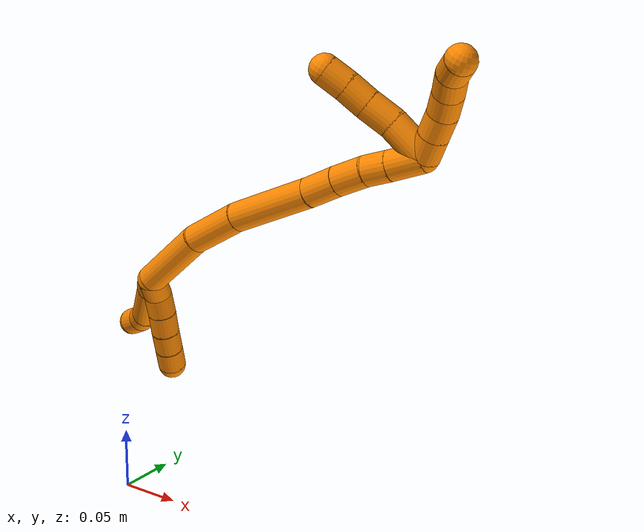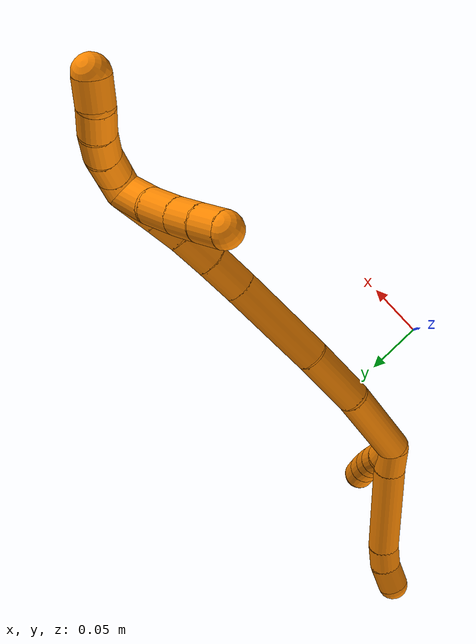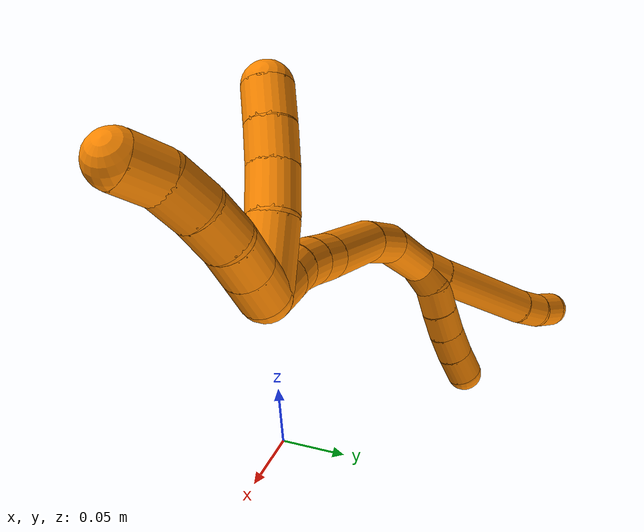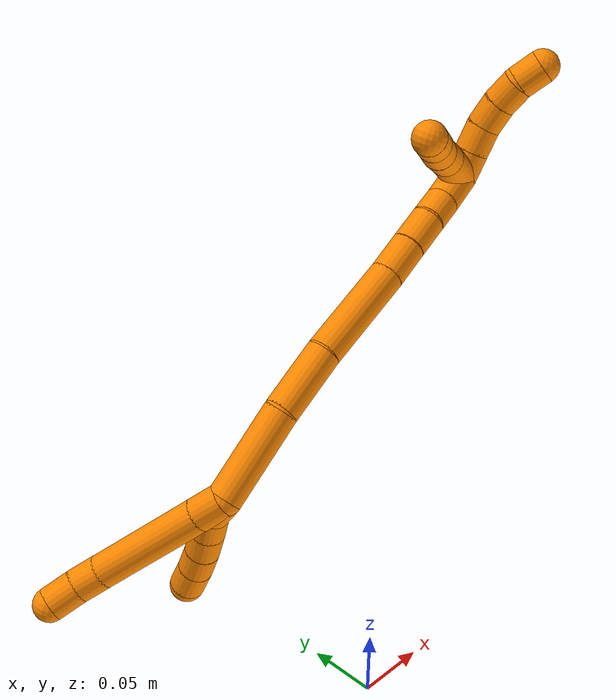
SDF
<sdf version="1.7">
 <world name="default">
  <model name="19">
   <static>0</static>
   <link name="19">
    <collision name="collision-cylinder-e_1_2_8">
     <pose>0.000466 0.007113 -0.008934 -2.46918 0.040792 -0.116608</pose>
     <geometry><cylinder><radius>0.0125</radius><length>0.022859</length></cylinder></geometry>
     <surface>
      <friction><ode><mu>1.16</mu><mu2>1.16</mu2><slip1>0</slip1><slip2>0</slip2></ode></friction>
      <contact><ode><kp>1e+06</kp><kd>1</kd><max_vel>0</max_vel><min_depth>0.001</min_depth></ode></contact>
     </surface>
    </collision>
    <visual name="visual-cylinder-e_1_2_8">
     <pose>0.000466 0.007113 -0.008934 -2.46918 0.040792 -0.116608</pose>
     <geometry><cylinder><radius>0.0125</radius><length>0.022859</length></cylinder></geometry>
     <material><ambient>0.996078 0.537255 0 1</ambient></material>
    </visual>
    <collision name="collision-cylinder-e_2_8_9">
     <pose>7.3e-05 0.040397 -0.050414 -2.46435 -0.020572 0.058396</pose>
     <geometry><cylinder><radius>0.0125</radius><length>0.083544</length></cylinder></geometry>
     <surface>
      <friction><ode><mu>1.16</mu><mu2>1.16</mu2><slip1>0</slip1><slip2>0</slip2></ode></friction>
      <contact><ode><kp>1e+06</kp><kd>1</kd><max_vel>0</max_vel><min_depth>0.001</min_depth></ode></contact>
     </surface>
    </collision>
    <visual name="visual-cylinder-e_2_8_9">
     <pose>7.3e-05 0.040397 -0.050414 -2.46435 -0.020572 0.058396</pose>
     <geometry><cylinder><radius>0.0125</radius><length>0.083544</length></cylinder></geometry>
     <material><ambient>0.996078 0.537255 0 1</ambient></material>
    </visual>
    <collision name="collision-cylinder-e_3_9_10">
     <pose>-0.00238 0.073159 -0.091057 -2.45833 -0.151436 0.420402</pose>
     <geometry><cylinder><radius>0.0125</radius><length>0.021122</length></cylinder></geometry>
     <surface>
      <friction><ode><mu>1.16</mu><mu2>1.16</mu2><slip1>0</slip1><slip2>0</slip2></ode></friction>
      <contact><ode><kp>1e+06</kp><kd>1</kd><max_vel>0</max_vel><min_depth>0.001</min_depth></ode></contact>
     </surface>
    </collision>
    <visual name="visual-cylinder-e_3_9_10">
     <pose>-0.00238 0.073159 -0.091057 -2.45833 -0.151436 0.420402</pose>
     <geometry><cylinder><radius>0.0125</radius><length>0.021122</length></cylinder></geometry>
     <material><ambient>0.996078 0.537255 0 1</ambient></material>
    </visual>
    <collision name="collision-cylinder-e_4_10_6">
     <pose>-0.008279 0.085906 -0.107511 -2.50683 -0.393255 1.09026</pose>
     <geometry><cylinder><radius>0.0125</radius><length>0.022475</length></cylinder></geometry>
     <surface>
      <friction><ode><mu>1.16</mu><mu2>1.16</mu2><slip1>0</slip1><slip2>0</slip2></ode></friction>
      <contact><ode><kp>1e+06</kp><kd>1</kd><max_vel>0</max_vel><min_depth>0.001</min_depth></ode></contact>
     </surface>
    </collision>
    <visual name="visual-cylinder-e_4_10_6">
     <pose>-0.008279 0.085906 -0.107511 -2.50683 -0.393255 1.09026</pose>
     <geometry><cylinder><radius>0.0125</radius><length>0.022475</length></cylinder></geometry>
     <material><ambient>0.996078 0.537255 0 1</ambient></material>
    </visual>
    <collision name="collision-cylinder-e_1_2_11">
     <pose>0.004494 0.003575 -0.008187 -2.7299 0.466113 -1.69866</pose>
     <geometry><cylinder><radius>0.0125</radius><length>0.02</length></cylinder></geometry>
     <surface>
      <friction><ode><mu>1.16</mu><mu2>1.16</mu2><slip1>0</slip1><slip2>0</slip2></ode></friction>
      <contact><ode><kp>1e+06</kp><kd>1</kd><max_vel>0</max_vel><min_depth>0.001</min_depth></ode></contact>
     </surface>
    </collision>
    <visual name="visual-cylinder-e_1_2_11">
     <pose>0.004494 0.003575 -0.008187 -2.7299 0.466113 -1.69866</pose>
     <geometry><cylinder><radius>0.0125</radius><length>0.02</length></cylinder></geometry>
     <material><ambient>0.996078 0.537255 0 1</ambient></material>
    </visual>
    <collision name="collision-cylinder-e_2_11_12">
     <pose>0.013754 0.007617 -0.025152 -3.08841 0.496754 -2.93259</pose>
     <geometry><cylinder><radius>0.0125</radius><length>0.02</length></cylinder></geometry>
     <surface>
      <friction><ode><mu>1.16</mu><mu2>1.16</mu2><slip1>0</slip1><slip2>0</slip2></ode></friction>
      <contact><ode><kp>1e+06</kp><kd>1</kd><max_vel>0</max_vel><min_depth>0.001</min_depth></ode></contact>
     </surface>
    </collision>
    <visual name="visual-cylinder-e_2_11_12">
     <pose>0.013754 0.007617 -0.025152 -3.08841 0.496754 -2.93259</pose>
     <geometry><cylinder><radius>0.0125</radius><length>0.02</length></cylinder></geometry>
     <material><ambient>0.996078 0.537255 0 1</ambient></material>
    </visual>
    <collision name="collision-cylinder-e_3_12_13">
     <pose>0.022825 0.008797 -0.042929 -3.06254 0.4451 -2.79556</pose>
     <geometry><cylinder><radius>0.0125</radius><length>0.02</length></cylinder></geometry>
     <surface>
      <friction><ode><mu>1.16</mu><mu2>1.16</mu2><slip1>0</slip1><slip2>0</slip2></ode></friction>
      <contact><ode><kp>1e+06</kp><kd>1</kd><max_vel>0</max_vel><min_depth>0.001</min_depth></ode></contact>
     </surface>
    </collision>
    <visual name="visual-cylinder-e_3_12_13">
     <pose>0.022825 0.008797 -0.042929 -3.06254 0.4451 -2.79556</pose>
     <geometry><cylinder><radius>0.0125</radius><length>0.02</length></cylinder></geometry>
     <material><ambient>0.996078 0.537255 0 1</ambient></material>
    </visual>
    <collision name="collision-cylinder-e_4_13_14">
     <pose>0.031401 0.010868 -0.060866 -2.99077 0.441234 -2.49171</pose>
     <geometry><cylinder><radius>0.0125</radius><length>0.02</length></cylinder></geometry>
     <surface>
      <friction><ode><mu>1.16</mu><mu2>1.16</mu2><slip1>0</slip1><slip2>0</slip2></ode></friction>
      <contact><ode><kp>1e+06</kp><kd>1</kd><max_vel>0</max_vel><min_depth>0.001</min_depth></ode></contact>
     </surface>
    </collision>
    <visual name="visual-cylinder-e_4_13_14">
     <pose>0.031401 0.010868 -0.060866 -2.99077 0.441234 -2.49171</pose>
     <geometry><cylinder><radius>0.0125</radius><length>0.02</length></cylinder></geometry>
     <material><ambient>0.996078 0.537255 0 1</ambient></material>
    </visual>
    <collision name="collision-cylinder-e_5_14_5">
     <pose>0.039657 0.014157 -0.078772 -2.92961 0.409941 -2.19556</pose>
     <geometry><cylinder><radius>0.0125</radius><length>0.02</length></cylinder></geometry>
     <surface>
      <friction><ode><mu>1.16</mu><mu2>1.16</mu2><slip1>0</slip1><slip2>0</slip2></ode></friction>
      <contact><ode><kp>1e+06</kp><kd>1</kd><max_vel>0</max_vel><min_depth>0.001</min_depth></ode></contact>
     </surface>
    </collision>
    <visual name="visual-cylinder-e_5_14_5">
     <pose>0.039657 0.014157 -0.078772 -2.92961 0.409941 -2.19556</pose>
     <geometry><cylinder><radius>0.0125</radius><length>0.02</length></cylinder></geometry>
     <material><ambient>0.996078 0.537255 0 1</ambient></material>
    </visual>
    <collision name="collision-cylinder-e_1_2_15">
     <pose>0.012201 -0.006763 0.032312 0.206313 0.354008 0.037032</pose>
     <geometry><cylinder><radius>0.0125</radius><length>0.070389</length></cylinder></geometry>
     <surface>
      <friction><ode><mu>1.16</mu><mu2>1.16</mu2><slip1>0</slip1><slip2>0</slip2></ode></friction>
      <contact><ode><kp>1e+06</kp><kd>1</kd><max_vel>0</max_vel><min_depth>0.001</min_depth></ode></contact>
     </surface>
    </collision>
    <visual name="visual-cylinder-e_1_2_15">
     <pose>0.012201 -0.006763 0.032312 0.206313 0.354008 0.037032</pose>
     <geometry><cylinder><radius>0.0125</radius><length>0.070389</length></cylinder></geometry>
     <material><ambient>0.996078 0.537255 0 1</ambient></material>
    </visual>
    <collision name="collision-cylinder-e_2_15_16">
     <pose>0.037511 -0.018628 0.085603 0.238583 0.545708 0.067057</pose>
     <geometry><cylinder><radius>0.0125</radius><length>0.050517</length></cylinder></geometry>
     <surface>
      <friction><ode><mu>1.16</mu><mu2>1.16</mu2><slip1>0</slip1><slip2>0</slip2></ode></friction>
      <contact><ode><kp>1e+06</kp><kd>1</kd><max_vel>0</max_vel><min_depth>0.001</min_depth></ode></contact>
     </surface>
    </collision>
    <visual name="visual-cylinder-e_2_15_16">
     <pose>0.037511 -0.018628 0.085603 0.238583 0.545708 0.067057</pose>
     <geometry><cylinder><radius>0.0125</radius><length>0.050517</length></cylinder></geometry>
     <material><ambient>0.996078 0.537255 0 1</ambient></material>
    </visual>
    <collision name="collision-cylinder-e_3_16_17">
     <pose>0.073916 -0.032193 0.134897 0.290428 0.66752 0.101327</pose>
     <geometry><cylinder><radius>0.0125</radius><length>0.075261</length></cylinder></geometry>
     <surface>
      <friction><ode><mu>1.16</mu><mu2>1.16</mu2><slip1>0</slip1><slip2>0</slip2></ode></friction>
      <contact><ode><kp>1e+06</kp><kd>1</kd><max_vel>0</max_vel><min_depth>0.001</min_depth></ode></contact>
     </surface>
    </collision>
    <visual name="visual-cylinder-e_3_16_17">
     <pose>0.073916 -0.032193 0.134897 0.290428 0.66752 0.101327</pose>
     <geometry><cylinder><radius>0.0125</radius><length>0.075261</length></cylinder></geometry>
     <material><ambient>0.996078 0.537255 0 1</ambient></material>
    </visual>
    <collision name="collision-cylinder-e_4_17_18">
     <pose>0.105646 -0.043378 0.174303 0.240671 0.636277 0.079602</pose>
     <geometry><cylinder><radius>0.0125</radius><length>0.028393</length></cylinder></geometry>
     <surface>
      <friction><ode><mu>1.16</mu><mu2>1.16</mu2><slip1>0</slip1><slip2>0</slip2></ode></friction>
      <contact><ode><kp>1e+06</kp><kd>1</kd><max_vel>0</max_vel><min_depth>0.001</min_depth></ode></contact>
     </surface>
    </collision>
    <visual name="visual-cylinder-e_4_17_18">
     <pose>0.105646 -0.043378 0.174303 0.240671 0.636277 0.079602</pose>
     <geometry><cylinder><radius>0.0125</radius><length>0.028393</length></cylinder></geometry>
     <material><ambient>0.996078 0.537255 0 1</ambient></material>
    </visual>
    <collision name="collision-cylinder-e_5_18_19">
     <pose>0.122353 -0.048556 0.195309 0.242889 0.680536 0.086364</pose>
     <geometry><cylinder><radius>0.0125</radius><length>0.026289</length></cylinder></geometry>
     <surface>
      <friction><ode><mu>1.16</mu><mu2>1.16</mu2><slip1>0</slip1><slip2>0</slip2></ode></friction>
      <contact><ode><kp>1e+06</kp><kd>1</kd><max_vel>0</max_vel><min_depth>0.001</min_depth></ode></contact>
     </surface>
    </collision>
    <visual name="visual-cylinder-e_5_18_19">
     <pose>0.122353 -0.048556 0.195309 0.242889 0.680536 0.086364</pose>
     <geometry><cylinder><radius>0.0125</radius><length>0.026289</length></cylinder></geometry>
     <material><ambient>0.996078 0.537255 0 1</ambient></material>
    </visual>
    <collision name="collision-cylinder-e_6_19_20">
     <pose>0.138093 -0.052612 0.212122 0.227804 0.812172 0.098299</pose>
     <geometry><cylinder><radius>0.0125</radius><length>0.020584</length></cylinder></geometry>
     <surface>
      <friction><ode><mu>1.16</mu><mu2>1.16</mu2><slip1>0</slip1><slip2>0</slip2></ode></friction>
      <contact><ode><kp>1e+06</kp><kd>1</kd><max_vel>0</max_vel><min_depth>0.001</min_depth></ode></contact>
     </surface>
    </collision>
    <visual name="visual-cylinder-e_6_19_20">
     <pose>0.138093 -0.052612 0.212122 0.227804 0.812172 0.098299</pose>
     <geometry><cylinder><radius>0.0125</radius><length>0.020584</length></cylinder></geometry>
     <material><ambient>0.996078 0.537255 0 1</ambient></material>
    </visual>
    <collision name="collision-cylinder-e_7_20_1">
     <pose>0.15569 -0.05612 0.228908 0.190645 0.788171 0.079477</pose>
     <geometry><cylinder><radius>0.0125</radius><length>0.028566</length></cylinder></geometry>
     <surface>
      <friction><ode><mu>1.16</mu><mu2>1.16</mu2><slip1>0</slip1><slip2>0</slip2></ode></friction>
      <contact><ode><kp>1e+06</kp><kd>1</kd><max_vel>0</max_vel><min_depth>0.001</min_depth></ode></contact>
     </surface>
    </collision>
    <visual name="visual-cylinder-e_7_20_1">
     <pose>0.15569 -0.05612 0.228908 0.190645 0.788171 0.079477</pose>
     <geometry><cylinder><radius>0.0125</radius><length>0.028566</length></cylinder></geometry>
     <material><ambient>0.996078 0.537255 0 1</ambient></material>
    </visual>
    <collision name="collision-cylinder-e_1_1_21">
     <pose>0.16534 -0.059165 0.248721 0.11408 -0.047841 -0.002732</pose>
     <geometry><cylinder><radius>0.0125</radius><length>0.02</length></cylinder></geometry>
     <surface>
      <friction><ode><mu>1.16</mu><mu2>1.16</mu2><slip1>0</slip1><slip2>0</slip2></ode></friction>
      <contact><ode><kp>1e+06</kp><kd>1</kd><max_vel>0</max_vel><min_depth>0.001</min_depth></ode></contact>
     </surface>
    </collision>
    <visual name="visual-cylinder-e_1_1_21">
     <pose>0.16534 -0.059165 0.248721 0.11408 -0.047841 -0.002732</pose>
     <geometry><cylinder><radius>0.0125</radius><length>0.02</length></cylinder></geometry>
     <material><ambient>0.996078 0.537255 0 1</ambient></material>
    </visual>
    <collision name="collision-cylinder-e_2_21_22">
     <pose>0.164461 -0.061458 0.26857 0.115894 -0.040024 -0.002322</pose>
     <geometry><cylinder><radius>0.0125</radius><length>0.02</length></cylinder></geometry>
     <surface>
      <friction><ode><mu>1.16</mu><mu2>1.16</mu2><slip1>0</slip1><slip2>0</slip2></ode></friction>
      <contact><ode><kp>1e+06</kp><kd>1</kd><max_vel>0</max_vel><min_depth>0.001</min_depth></ode></contact>
     </surface>
    </collision>
    <visual name="visual-cylinder-e_2_21_22">
     <pose>0.164461 -0.061458 0.26857 0.115894 -0.040024 -0.002322</pose>
     <geometry><cylinder><radius>0.0125</radius><length>0.02</length></cylinder></geometry>
     <material><ambient>0.996078 0.537255 0 1</ambient></material>
    </visual>
    <collision name="collision-cylinder-e_3_22_23">
     <pose>0.162514 -0.065514 0.287939 0.298001 -0.155335 -0.023364</pose>
     <geometry><cylinder><radius>0.0125</radius><length>0.02</length></cylinder></geometry>
     <surface>
      <friction><ode><mu>1.16</mu><mu2>1.16</mu2><slip1>0</slip1><slip2>0</slip2></ode></friction>
      <contact><ode><kp>1e+06</kp><kd>1</kd><max_vel>0</max_vel><min_depth>0.001</min_depth></ode></contact>
     </surface>
    </collision>
    <visual name="visual-cylinder-e_3_22_23">
     <pose>0.162514 -0.065514 0.287939 0.298001 -0.155335 -0.023364</pose>
     <geometry><cylinder><radius>0.0125</radius><length>0.02</length></cylinder></geometry>
     <material><ambient>0.996078 0.537255 0 1</ambient></material>
    </visual>
    <collision name="collision-cylinder-e_4_23_24">
     <pose>0.159024 -0.072707 0.306203 0.452919 -0.195503 -0.045183</pose>
     <geometry><cylinder><radius>0.0125</radius><length>0.02</length></cylinder></geometry>
     <surface>
      <friction><ode><mu>1.16</mu><mu2>1.16</mu2><slip1>0</slip1><slip2>0</slip2></ode></friction>
      <contact><ode><kp>1e+06</kp><kd>1</kd><max_vel>0</max_vel><min_depth>0.001</min_depth></ode></contact>
     </surface>
    </collision>
    <visual name="visual-cylinder-e_4_23_24">
     <pose>0.159024 -0.072707 0.306203 0.452919 -0.195503 -0.045183</pose>
     <geometry><cylinder><radius>0.0125</radius><length>0.02</length></cylinder></geometry>
     <material><ambient>0.996078 0.537255 0 1</ambient></material>
    </visual>
    <collision name="collision-cylinder-e_5_24_4">
     <pose>0.157458 -0.082988 0.323024 0.642534 0.037617 0.01252</pose>
     <geometry><cylinder><radius>0.0125</radius><length>0.02</length></cylinder></geometry>
     <surface>
      <friction><ode><mu>1.16</mu><mu2>1.16</mu2><slip1>0</slip1><slip2>0</slip2></ode></friction>
      <contact><ode><kp>1e+06</kp><kd>1</kd><max_vel>0</max_vel><min_depth>0.001</min_depth></ode></contact>
     </surface>
    </collision>
    <visual name="visual-cylinder-e_5_24_4">
     <pose>0.157458 -0.082988 0.323024 0.642534 0.037617 0.01252</pose>
     <geometry><cylinder><radius>0.0125</radius><length>0.02</length></cylinder></geometry>
     <material><ambient>0.996078 0.537255 0 1</ambient></material>
    </visual>
    <collision name="collision-cylinder-e_1_1_25">
     <pose>0.150063 -0.05363 0.244231 -0.680467 -1.15321 0.452544</pose>
     <geometry><cylinder><radius>0.0125</radius><length>0.034473</length></cylinder></geometry>
     <surface>
      <friction><ode><mu>1.16</mu><mu2>1.16</mu2><slip1>0</slip1><slip2>0</slip2></ode></friction>
      <contact><ode><kp>1e+06</kp><kd>1</kd><max_vel>0</max_vel><min_depth>0.001</min_depth></ode></contact>
     </surface>
    </collision>
    <visual name="visual-cylinder-e_1_1_25">
     <pose>0.150063 -0.05363 0.244231 -0.680467 -1.15321 0.452544</pose>
     <geometry><cylinder><radius>0.0125</radius><length>0.034473</length></cylinder></geometry>
     <material><ambient>0.996078 0.537255 0 1</ambient></material>
    </visual>
    <collision name="collision-cylinder-e_2_25_26">
     <pose>0.122461 -0.047565 0.252061 -0.607622 -1.32916 0.481726</pose>
     <geometry><cylinder><radius>0.0125</radius><length>0.024401</length></cylinder></geometry>
     <surface>
      <friction><ode><mu>1.16</mu><mu2>1.16</mu2><slip1>0</slip1><slip2>0</slip2></ode></friction>
      <contact><ode><kp>1e+06</kp><kd>1</kd><max_vel>0</max_vel><min_depth>0.001</min_depth></ode></contact>
     </surface>
    </collision>
    <visual name="visual-cylinder-e_2_25_26">
     <pose>0.122461 -0.047565 0.252061 -0.607622 -1.32916 0.481726</pose>
     <geometry><cylinder><radius>0.0125</radius><length>0.024401</length></cylinder></geometry>
     <material><ambient>0.996078 0.537255 0 1</ambient></material>
    </visual>
    <collision name="collision-cylinder-e_3_26_27">
     <pose>0.100733 -0.044858 0.257315 -0.349247 -1.27229 0.259137</pose>
     <geometry><cylinder><radius>0.0125</radius><length>0.020677</length></cylinder></geometry>
     <surface>
      <friction><ode><mu>1.16</mu><mu2>1.16</mu2><slip1>0</slip1><slip2>0</slip2></ode></friction>
      <contact><ode><kp>1e+06</kp><kd>1</kd><max_vel>0</max_vel><min_depth>0.001</min_depth></ode></contact>
     </surface>
    </collision>
    <visual name="visual-cylinder-e_3_26_27">
     <pose>0.100733 -0.044858 0.257315 -0.349247 -1.27229 0.259137</pose>
     <geometry><cylinder><radius>0.0125</radius><length>0.020677</length></cylinder></geometry>
     <material><ambient>0.996078 0.537255 0 1</ambient></material>
    </visual>
    <collision name="collision-cylinder-e_4_27_3">
     <pose>0.08091 -0.043134 0.262458 -0.2907 -1.33533 0.229817</pose>
     <geometry><cylinder><radius>0.0125</radius><length>0.020448</length></cylinder></geometry>
     <surface>
      <friction><ode><mu>1.16</mu><mu2>1.16</mu2><slip1>0</slip1><slip2>0</slip2></ode></friction>
      <contact><ode><kp>1e+06</kp><kd>1</kd><max_vel>0</max_vel><min_depth>0.001</min_depth></ode></contact>
     </surface>
    </collision>
    <visual name="visual-cylinder-e_4_27_3">
     <pose>0.08091 -0.043134 0.262458 -0.2907 -1.33533 0.229817</pose>
     <geometry><cylinder><radius>0.0125</radius><length>0.020448</length></cylinder></geometry>
     <material><ambient>0.996078 0.537255 0 1</ambient></material>
    </visual>
    <collision name="collision-sphere-3">
     <pose>0.070968 -0.04245 0.264743 0 -0 0</pose>
     <geometry><sphere><radius>0.0125</radius></sphere></geometry>
     <surface>
      <friction><ode><mu>1.16</mu><mu2>1.16</mu2><slip1>0</slip1><slip2>0</slip2></ode></friction>
      <contact><ode><kp>1e+06</kp><kd>1</kd><max_vel>0</max_vel><min_depth>0.001</min_depth></ode></contact>
     </surface>
    </collision>
    <visual name="visual-sphere-3">
     <pose>0.070968 -0.04245 0.264743 0 -0 0</pose>
     <geometry><sphere><radius>0.0125</radius></sphere></geometry>
     <material><ambient>0.996078 0.537255 0 1</ambient></material>
    </visual>
    <collision name="collision-sphere-27">
     <pose>0.090852 -0.043818 0.260172 0 -0 0</pose>
     <geometry><sphere><radius>0.0125</radius></sphere></geometry>
     <surface>
      <friction><ode><mu>1.16</mu><mu2>1.16</mu2><slip1>0</slip1><slip2>0</slip2></ode></friction>
      <contact><ode><kp>1e+06</kp><kd>1</kd><max_vel>0</max_vel><min_depth>0.001</min_depth></ode></contact>
     </surface>
    </collision>
    <visual name="visual-sphere-27">
     <pose>0.090852 -0.043818 0.260172 0 -0 0</pose>
     <geometry><sphere><radius>0.0125</radius></sphere></geometry>
     <material><ambient>0.996078 0.537255 0 1</ambient></material>
    </visual>
    <collision name="collision-sphere-26">
     <pose>0.110615 -0.045899 0.254458 0 -0 0</pose>
     <geometry><sphere><radius>0.0125</radius></sphere></geometry>
     <surface>
      <friction><ode><mu>1.16</mu><mu2>1.16</mu2><slip1>0</slip1><slip2>0</slip2></ode></friction>
      <contact><ode><kp>1e+06</kp><kd>1</kd><max_vel>0</max_vel><min_depth>0.001</min_depth></ode></contact>
     </surface>
    </collision>
    <visual name="visual-sphere-26">
     <pose>0.110615 -0.045899 0.254458 0 -0 0</pose>
     <geometry><sphere><radius>0.0125</radius></sphere></geometry>
     <material><ambient>0.996078 0.537255 0 1</ambient></material>
    </visual>
    <collision name="collision-sphere-25">
     <pose>0.134307 -0.049232 0.249665 0 -0 0</pose>
     <geometry><sphere><radius>0.0125</radius></sphere></geometry>
     <surface>
      <friction><ode><mu>1.16</mu><mu2>1.16</mu2><slip1>0</slip1><slip2>0</slip2></ode></friction>
      <contact><ode><kp>1e+06</kp><kd>1</kd><max_vel>0</max_vel><min_depth>0.001</min_depth></ode></contact>
     </surface>
    </collision>
    <visual name="visual-sphere-25">
     <pose>0.134307 -0.049232 0.249665 0 -0 0</pose>
     <geometry><sphere><radius>0.0125</radius></sphere></geometry>
     <material><ambient>0.996078 0.537255 0 1</ambient></material>
    </visual>
    <collision name="collision-sphere-4">
     <pose>0.157834 -0.088976 0.331024 0 -0 0</pose>
     <geometry><sphere><radius>0.0125</radius></sphere></geometry>
     <surface>
      <friction><ode><mu>1.16</mu><mu2>1.16</mu2><slip1>0</slip1><slip2>0</slip2></ode></friction>
      <contact><ode><kp>1e+06</kp><kd>1</kd><max_vel>0</max_vel><min_depth>0.001</min_depth></ode></contact>
     </surface>
    </collision>
    <visual name="visual-sphere-4">
     <pose>0.157834 -0.088976 0.331024 0 -0 0</pose>
     <geometry><sphere><radius>0.0125</radius></sphere></geometry>
     <material><ambient>0.996078 0.537255 0 1</ambient></material>
    </visual>
    <collision name="collision-sphere-24">
     <pose>0.157082 -0.077 0.315024 0 -0 0</pose>
     <geometry><sphere><radius>0.0125</radius></sphere></geometry>
     <surface>
      <friction><ode><mu>1.16</mu><mu2>1.16</mu2><slip1>0</slip1><slip2>0</slip2></ode></friction>
      <contact><ode><kp>1e+06</kp><kd>1</kd><max_vel>0</max_vel><min_depth>0.001</min_depth></ode></contact>
     </surface>
    </collision>
    <visual name="visual-sphere-24">
     <pose>0.157082 -0.077 0.315024 0 -0 0</pose>
     <geometry><sphere><radius>0.0125</radius></sphere></geometry>
     <material><ambient>0.996078 0.537255 0 1</ambient></material>
    </visual>
    <collision name="collision-sphere-23">
     <pose>0.160967 -0.068415 0.297383 0 -0 0</pose>
     <geometry><sphere><radius>0.0125</radius></sphere></geometry>
     <surface>
      <friction><ode><mu>1.16</mu><mu2>1.16</mu2><slip1>0</slip1><slip2>0</slip2></ode></friction>
      <contact><ode><kp>1e+06</kp><kd>1</kd><max_vel>0</max_vel><min_depth>0.001</min_depth></ode></contact>
     </surface>
    </collision>
    <visual name="visual-sphere-23">
     <pose>0.160967 -0.068415 0.297383 0 -0 0</pose>
     <geometry><sphere><radius>0.0125</radius></sphere></geometry>
     <material><ambient>0.996078 0.537255 0 1</ambient></material>
    </visual>
    <collision name="collision-sphere-22">
     <pose>0.164061 -0.062613 0.278495 0 -0 0</pose>
     <geometry><sphere><radius>0.0125</radius></sphere></geometry>
     <surface>
      <friction><ode><mu>1.16</mu><mu2>1.16</mu2><slip1>0</slip1><slip2>0</slip2></ode></friction>
      <contact><ode><kp>1e+06</kp><kd>1</kd><max_vel>0</max_vel><min_depth>0.001</min_depth></ode></contact>
     </surface>
    </collision>
    <visual name="visual-sphere-22">
     <pose>0.164061 -0.062613 0.278495 0 -0 0</pose>
     <geometry><sphere><radius>0.0125</radius></sphere></geometry>
     <material><ambient>0.996078 0.537255 0 1</ambient></material>
    </visual>
    <collision name="collision-sphere-21">
     <pose>0.164861 -0.060302 0.258645 0 -0 0</pose>
     <geometry><sphere><radius>0.0125</radius></sphere></geometry>
     <surface>
      <friction><ode><mu>1.16</mu><mu2>1.16</mu2><slip1>0</slip1><slip2>0</slip2></ode></friction>
      <contact><ode><kp>1e+06</kp><kd>1</kd><max_vel>0</max_vel><min_depth>0.001</min_depth></ode></contact>
     </surface>
    </collision>
    <visual name="visual-sphere-21">
     <pose>0.164861 -0.060302 0.258645 0 -0 0</pose>
     <geometry><sphere><radius>0.0125</radius></sphere></geometry>
     <material><ambient>0.996078 0.537255 0 1</ambient></material>
    </visual>
    <collision name="collision-sphere-1">
     <pose>0.165818 -0.058028 0.238798 0 -0 0</pose>
     <geometry><sphere><radius>0.0125</radius></sphere></geometry>
     <surface>
      <friction><ode><mu>1.16</mu><mu2>1.16</mu2><slip1>0</slip1><slip2>0</slip2></ode></friction>
      <contact><ode><kp>1e+06</kp><kd>1</kd><max_vel>0</max_vel><min_depth>0.001</min_depth></ode></contact>
     </surface>
    </collision>
    <visual name="visual-sphere-1">
     <pose>0.165818 -0.058028 0.238798 0 -0 0</pose>
     <geometry><sphere><radius>0.0125</radius></sphere></geometry>
     <material><ambient>0.996078 0.537255 0 1</ambient></material>
    </visual>
    <collision name="collision-sphere-11">
     <pose>0.008988 0.007149 -0.016374 0 -0 0</pose>
     <geometry><sphere><radius>0.0125</radius></sphere></geometry>
     <surface>
      <friction><ode><mu>1.16</mu><mu2>1.16</mu2><slip1>0</slip1><slip2>0</slip2></ode></friction>
      <contact><ode><kp>1e+06</kp><kd>1</kd><max_vel>0</max_vel><min_depth>0.001</min_depth></ode></contact>
     </surface>
    </collision>
    <visual name="visual-sphere-11">
     <pose>0.008988 0.007149 -0.016374 0 -0 0</pose>
     <geometry><sphere><radius>0.0125</radius></sphere></geometry>
     <material><ambient>0.996078 0.537255 0 1</ambient></material>
    </visual>
    <collision name="collision-sphere-6">
     <pose>-0.012585 0.092061 -0.115869 0 -0 0</pose>
     <geometry><sphere><radius>0.0125</radius></sphere></geometry>
     <surface>
      <friction><ode><mu>1.16</mu><mu2>1.16</mu2><slip1>0</slip1><slip2>0</slip2></ode></friction>
      <contact><ode><kp>1e+06</kp><kd>1</kd><max_vel>0</max_vel><min_depth>0.001</min_depth></ode></contact>
     </surface>
    </collision>
    <visual name="visual-sphere-6">
     <pose>-0.012585 0.092061 -0.115869 0 -0 0</pose>
     <geometry><sphere><radius>0.0125</radius></sphere></geometry>
     <material><ambient>0.996078 0.537255 0 1</ambient></material>
    </visual>
    <collision name="collision-sphere-10">
     <pose>-0.003973 0.079751 -0.099154 0 -0 0</pose>
     <geometry><sphere><radius>0.0125</radius></sphere></geometry>
     <surface>
      <friction><ode><mu>1.16</mu><mu2>1.16</mu2><slip1>0</slip1><slip2>0</slip2></ode></friction>
      <contact><ode><kp>1e+06</kp><kd>1</kd><max_vel>0</max_vel><min_depth>0.001</min_depth></ode></contact>
     </surface>
    </collision>
    <visual name="visual-sphere-10">
     <pose>-0.003973 0.079751 -0.099154 0 -0 0</pose>
     <geometry><sphere><radius>0.0125</radius></sphere></geometry>
     <material><ambient>0.996078 0.537255 0 1</ambient></material>
    </visual>
    <collision name="collision-sphere-9">
     <pose>-0.000786 0.066568 -0.082961 0 -0 0</pose>
     <geometry><sphere><radius>0.0125</radius></sphere></geometry>
     <surface>
      <friction><ode><mu>1.16</mu><mu2>1.16</mu2><slip1>0</slip1><slip2>0</slip2></ode></friction>
      <contact><ode><kp>1e+06</kp><kd>1</kd><max_vel>0</max_vel><min_depth>0.001</min_depth></ode></contact>
     </surface>
    </collision>
    <visual name="visual-sphere-9">
     <pose>-0.000786 0.066568 -0.082961 0 -0 0</pose>
     <geometry><sphere><radius>0.0125</radius></sphere></geometry>
     <material><ambient>0.996078 0.537255 0 1</ambient></material>
    </visual>
    <collision name="collision-sphere-2">
     <geometry><sphere><radius>0.0125</radius></sphere></geometry>
     <surface>
      <friction><ode><mu>1.16</mu><mu2>1.16</mu2><slip1>0</slip1><slip2>0</slip2></ode></friction>
      <contact><ode><kp>1e+06</kp><kd>1</kd><max_vel>0</max_vel><min_depth>0.001</min_depth></ode></contact>
     </surface>
    </collision>
    <visual name="visual-sphere-2">
     <geometry><sphere><radius>0.0125</radius></sphere></geometry>
     <material><ambient>0.996078 0.537255 0 1</ambient></material>
    </visual>
    <collision name="collision-sphere-19">
     <pose>0.130623 -0.051013 0.205225 0 -0 0</pose>
     <geometry><sphere><radius>0.0125</radius></sphere></geometry>
     <surface>
      <friction><ode><mu>1.16</mu><mu2>1.16</mu2><slip1>0</slip1><slip2>0</slip2></ode></friction>
      <contact><ode><kp>1e+06</kp><kd>1</kd><max_vel>0</max_vel><min_depth>0.001</min_depth></ode></contact>
     </surface>
    </collision>
    <visual name="visual-sphere-19">
     <pose>0.130623 -0.051013 0.205225 0 -0 0</pose>
     <geometry><sphere><radius>0.0125</radius></sphere></geometry>
     <material><ambient>0.996078 0.537255 0 1</ambient></material>
    </visual>
    <collision name="collision-sphere-8">
     <pose>0.000932 0.014226 -0.017868 0 -0 0</pose>
     <geometry><sphere><radius>0.0125</radius></sphere></geometry>
     <surface>
      <friction><ode><mu>1.16</mu><mu2>1.16</mu2><slip1>0</slip1><slip2>0</slip2></ode></friction>
      <contact><ode><kp>1e+06</kp><kd>1</kd><max_vel>0</max_vel><min_depth>0.001</min_depth></ode></contact>
     </surface>
    </collision>
    <visual name="visual-sphere-8">
     <pose>0.000932 0.014226 -0.017868 0 -0 0</pose>
     <geometry><sphere><radius>0.0125</radius></sphere></geometry>
     <material><ambient>0.996078 0.537255 0 1</ambient></material>
    </visual>
    <collision name="collision-sphere-12">
     <pose>0.01852 0.008084 -0.033931 0 -0 0</pose>
     <geometry><sphere><radius>0.0125</radius></sphere></geometry>
     <surface>
      <friction><ode><mu>1.16</mu><mu2>1.16</mu2><slip1>0</slip1><slip2>0</slip2></ode></friction>
      <contact><ode><kp>1e+06</kp><kd>1</kd><max_vel>0</max_vel><min_depth>0.001</min_depth></ode></contact>
     </surface>
    </collision>
    <visual name="visual-sphere-12">
     <pose>0.01852 0.008084 -0.033931 0 -0 0</pose>
     <geometry><sphere><radius>0.0125</radius></sphere></geometry>
     <material><ambient>0.996078 0.537255 0 1</ambient></material>
    </visual>
    <collision name="collision-sphere-13">
     <pose>0.027131 0.00951 -0.051926 0 -0 0</pose>
     <geometry><sphere><radius>0.0125</radius></sphere></geometry>
     <surface>
      <friction><ode><mu>1.16</mu><mu2>1.16</mu2><slip1>0</slip1><slip2>0</slip2></ode></friction>
      <contact><ode><kp>1e+06</kp><kd>1</kd><max_vel>0</max_vel><min_depth>0.001</min_depth></ode></contact>
     </surface>
    </collision>
    <visual name="visual-sphere-13">
     <pose>0.027131 0.00951 -0.051926 0 -0 0</pose>
     <geometry><sphere><radius>0.0125</radius></sphere></geometry>
     <material><ambient>0.996078 0.537255 0 1</ambient></material>
    </visual>
    <collision name="collision-sphere-14">
     <pose>0.035672 0.012227 -0.069806 0 -0 0</pose>
     <geometry><sphere><radius>0.0125</radius></sphere></geometry>
     <surface>
      <friction><ode><mu>1.16</mu><mu2>1.16</mu2><slip1>0</slip1><slip2>0</slip2></ode></friction>
      <contact><ode><kp>1e+06</kp><kd>1</kd><max_vel>0</max_vel><min_depth>0.001</min_depth></ode></contact>
     </surface>
    </collision>
    <visual name="visual-sphere-14">
     <pose>0.035672 0.012227 -0.069806 0 -0 0</pose>
     <geometry><sphere><radius>0.0125</radius></sphere></geometry>
     <material><ambient>0.996078 0.537255 0 1</ambient></material>
    </visual>
    <collision name="collision-sphere-5">
     <pose>0.043643 0.016086 -0.087738 0 -0 0</pose>
     <geometry><sphere><radius>0.0125</radius></sphere></geometry>
     <surface>
      <friction><ode><mu>1.16</mu><mu2>1.16</mu2><slip1>0</slip1><slip2>0</slip2></ode></friction>
      <contact><ode><kp>1e+06</kp><kd>1</kd><max_vel>0</max_vel><min_depth>0.001</min_depth></ode></contact>
     </surface>
    </collision>
    <visual name="visual-sphere-5">
     <pose>0.043643 0.016086 -0.087738 0 -0 0</pose>
     <geometry><sphere><radius>0.0125</radius></sphere></geometry>
     <material><ambient>0.996078 0.537255 0 1</ambient></material>
    </visual>
    <collision name="collision-sphere-15">
     <pose>0.024401 -0.013525 0.064624 0 -0 0</pose>
     <geometry><sphere><radius>0.0125</radius></sphere></geometry>
     <surface>
      <friction><ode><mu>1.16</mu><mu2>1.16</mu2><slip1>0</slip1><slip2>0</slip2></ode></friction>
      <contact><ode><kp>1e+06</kp><kd>1</kd><max_vel>0</max_vel><min_depth>0.001</min_depth></ode></contact>
     </surface>
    </collision>
    <visual name="visual-sphere-15">
     <pose>0.024401 -0.013525 0.064624 0 -0 0</pose>
     <geometry><sphere><radius>0.0125</radius></sphere></geometry>
     <material><ambient>0.996078 0.537255 0 1</ambient></material>
    </visual>
    <collision name="collision-sphere-16">
     <pose>0.050621 -0.02373 0.106581 0 -0 0</pose>
     <geometry><sphere><radius>0.0125</radius></sphere></geometry>
     <surface>
      <friction><ode><mu>1.16</mu><mu2>1.16</mu2><slip1>0</slip1><slip2>0</slip2></ode></friction>
      <contact><ode><kp>1e+06</kp><kd>1</kd><max_vel>0</max_vel><min_depth>0.001</min_depth></ode></contact>
     </surface>
    </collision>
    <visual name="visual-sphere-16">
     <pose>0.050621 -0.02373 0.106581 0 -0 0</pose>
     <geometry><sphere><radius>0.0125</radius></sphere></geometry>
     <material><ambient>0.996078 0.537255 0 1</ambient></material>
    </visual>
    <collision name="collision-sphere-17">
     <pose>0.097211 -0.040656 0.163213 0 -0 0</pose>
     <geometry><sphere><radius>0.0125</radius></sphere></geometry>
     <surface>
      <friction><ode><mu>1.16</mu><mu2>1.16</mu2><slip1>0</slip1><slip2>0</slip2></ode></friction>
      <contact><ode><kp>1e+06</kp><kd>1</kd><max_vel>0</max_vel><min_depth>0.001</min_depth></ode></contact>
     </surface>
    </collision>
    <visual name="visual-sphere-17">
     <pose>0.097211 -0.040656 0.163213 0 -0 0</pose>
     <geometry><sphere><radius>0.0125</radius></sphere></geometry>
     <material><ambient>0.996078 0.537255 0 1</ambient></material>
    </visual>
    <collision name="collision-sphere-18">
     <pose>0.114082 -0.046099 0.185392 0 -0 0</pose>
     <geometry><sphere><radius>0.0125</radius></sphere></geometry>
     <surface>
      <friction><ode><mu>1.16</mu><mu2>1.16</mu2><slip1>0</slip1><slip2>0</slip2></ode></friction>
      <contact><ode><kp>1e+06</kp><kd>1</kd><max_vel>0</max_vel><min_depth>0.001</min_depth></ode></contact>
     </surface>
    </collision>
    <visual name="visual-sphere-18">
     <pose>0.114082 -0.046099 0.185392 0 -0 0</pose>
     <geometry><sphere><radius>0.0125</radius></sphere></geometry>
     <material><ambient>0.996078 0.537255 0 1</ambient></material>
    </visual>
    <collision name="collision-sphere-20">
     <pose>0.145563 -0.054211 0.219019 0 -0 0</pose>
     <geometry><sphere><radius>0.0125</radius></sphere></geometry>
     <surface>
      <friction><ode><mu>1.16</mu><mu2>1.16</mu2><slip1>0</slip1><slip2>0</slip2></ode></friction>
      <contact><ode><kp>1e+06</kp><kd>1</kd><max_vel>0</max_vel><min_depth>0.001</min_depth></ode></contact>
     </surface>
    </collision>
    <visual name="visual-sphere-20">
     <pose>0.145563 -0.054211 0.219019 0 -0 0</pose>
     <geometry><sphere><radius>0.0125</radius></sphere></geometry>
     <material><ambient>0.996078 0.537255 0 1</ambient></material>
    </visual>
    <inertial>
     <pose>0.069227 -0.017035 0.104817 0 -0 0</pose>
     <mass>0.75</mass>
     <inertia><ixx>0.000155</ixx><ixy>0</ixy><ixz>0</ixz><iyy>8e-05</iyy><iyz>0</iyz><izz>-4.5e-05</izz></inertia>
    </inertial>
   </link>
   <pose>-0.04818 0.091607 0.148811 0.208872 0.387877 0.492125</pose>
  </model>
 </world>
</sdf>
